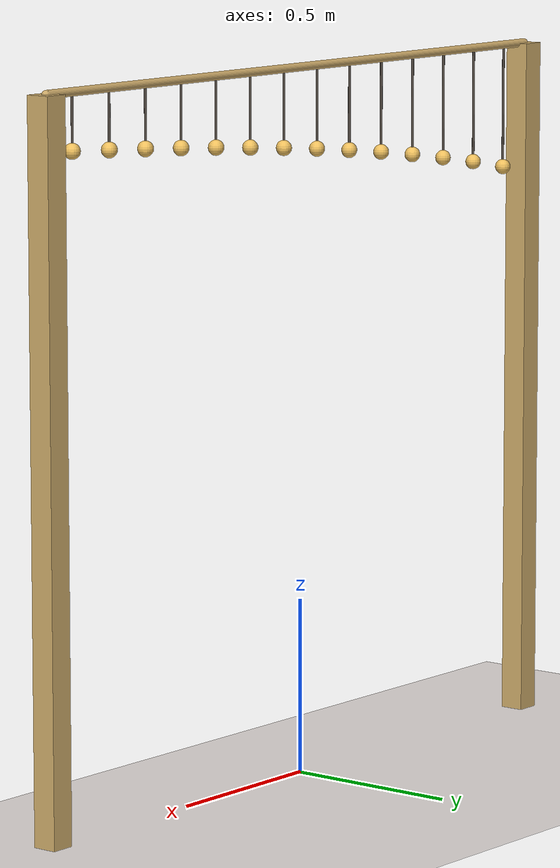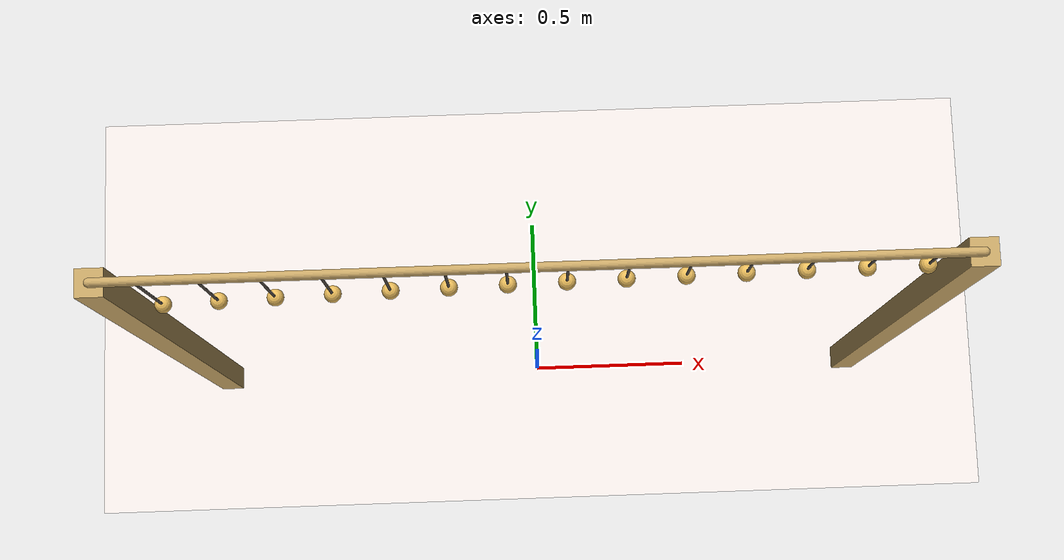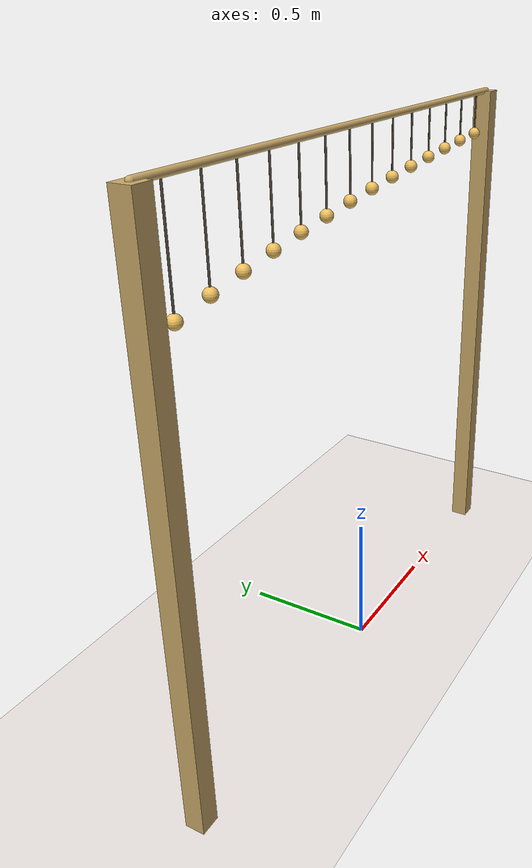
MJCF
<mujoco model="pendulum_waves">
  <compiler angle="radian" coordinate="local" autolimits="true"/>
  <option timestep="0.001" gravity="0 0 -9.81" integrator="implicitfast"/>

  <visual>
    <headlight diffuse="0 0 0" ambient="0.50 0.48 0.55" specular="0 0 0"/>
    <rgba haze="0.94 0.91 0.90 1"/>
    <global azimuth="120" elevation="-12" offwidth="1920" offheight="1080" fovy="38"/>
    <quality shadowsize="8192" offsamples="8"/>
    <map shadowclip="5" shadowscale="0.7"/>
  </visual>

  <asset>
    <texture type="skybox" builtin="flat"
             rgb1="0.74 0.68 0.86" rgb2="0.74 0.68 0.86"
             width="512" height="512" mark="none" markrgb="0 0 0"/>
    <material name="floor_mat"  rgba="0.94 0.91 0.90 1" specular="0" shininess="0"/>
    <material name="frame_wood" rgba="0.78 0.65 0.40 1" specular="0.12" shininess="0.15"/>
    <material name="rod_mat"    rgba="0.30 0.27 0.24 1" specular="0" shininess="0"/>
    <material name="bob_warm"   rgba="0.92 0.74 0.36 1" specular="0.4" shininess="0.55"/>
  </asset>

  <worldbody>
    <light pos="0 0 12" dir="-0.30 0.55 -1" directional="true" castshadow="true"
           diffuse="0.85 0.82 0.78" specular="0.15 0.15 0.15"/>
    <light pos="0 0 8" dir="0.40 -0.30 -1" directional="true" castshadow="false"
           diffuse="0.28 0.28 0.34" specular="0 0 0"/>

    <geom name="floor" type="plane" size="40 40 0.1" material="floor_mat"/>

    <geom type="box" size="0.035 0.035 1.00"
          pos="-1.0500 0 1.0000" material="frame_wood"/>
    <geom type="box" size="0.035 0.035 1.00"
          pos=" 1.0500 0 1.0000" material="frame_wood"/>
    <geom name="bar" type="capsule" fromto="-1.0500 0 2.0000  1.0500 0 2.0000" size="0.012"
          material="frame_wood"/>

    <body name="p0" pos="-0.9500 0 2.0000">
      <joint name="j0" type="hinge" axis="1 0 0" damping="0.0008"/>
      <geom type="capsule" fromto="0 0 0  0 0 -0.3578" size="0.0035"
            material="rod_mat" contype="0" conaffinity="0"/>
      <geom type="sphere" pos="0 0 -0.3578" size="0.022" mass="0.020"
            material="bob_warm" contype="0" conaffinity="0"/>
    </body>
    <body name="p1" pos="-0.8038 0 2.0000">
      <joint name="j1" type="hinge" axis="1 0 0" damping="0.0008"/>
      <geom type="capsule" fromto="0 0 0  0 0 -0.3308" size="0.0035"
            material="rod_mat" contype="0" conaffinity="0"/>
      <geom type="sphere" pos="0 0 -0.3308" size="0.022" mass="0.020"
            material="bob_warm" contype="0" conaffinity="0"/>
    </body>
    <body name="p2" pos="-0.6577 0 2.0000">
      <joint name="j2" type="hinge" axis="1 0 0" damping="0.0008"/>
      <geom type="capsule" fromto="0 0 0  0 0 -0.3068" size="0.0035"
            material="rod_mat" contype="0" conaffinity="0"/>
      <geom type="sphere" pos="0 0 -0.3068" size="0.022" mass="0.020"
            material="bob_warm" contype="0" conaffinity="0"/>
    </body>
    <body name="p3" pos="-0.5115 0 2.0000">
      <joint name="j3" type="hinge" axis="1 0 0" damping="0.0008"/>
      <geom type="capsule" fromto="0 0 0  0 0 -0.2853" size="0.0035"
            material="rod_mat" contype="0" conaffinity="0"/>
      <geom type="sphere" pos="0 0 -0.2853" size="0.022" mass="0.020"
            material="bob_warm" contype="0" conaffinity="0"/>
    </body>
    <body name="p4" pos="-0.3654 0 2.0000">
      <joint name="j4" type="hinge" axis="1 0 0" damping="0.0008"/>
      <geom type="capsule" fromto="0 0 0  0 0 -0.2659" size="0.0035"
            material="rod_mat" contype="0" conaffinity="0"/>
      <geom type="sphere" pos="0 0 -0.2659" size="0.022" mass="0.020"
            material="bob_warm" contype="0" conaffinity="0"/>
    </body>
    <body name="p5" pos="-0.2192 0 2.0000">
      <joint name="j5" type="hinge" axis="1 0 0" damping="0.0008"/>
      <geom type="capsule" fromto="0 0 0  0 0 -0.2485" size="0.0035"
            material="rod_mat" contype="0" conaffinity="0"/>
      <geom type="sphere" pos="0 0 -0.2485" size="0.022" mass="0.020"
            material="bob_warm" contype="0" conaffinity="0"/>
    </body>
    <body name="p6" pos="-0.0731 0 2.0000">
      <joint name="j6" type="hinge" axis="1 0 0" damping="0.0008"/>
      <geom type="capsule" fromto="0 0 0  0 0 -0.2327" size="0.0035"
            material="rod_mat" contype="0" conaffinity="0"/>
      <geom type="sphere" pos="0 0 -0.2327" size="0.022" mass="0.020"
            material="bob_warm" contype="0" conaffinity="0"/>
    </body>
    <body name="p7" pos="0.0731 0 2.0000">
      <joint name="j7" type="hinge" axis="1 0 0" damping="0.0008"/>
      <geom type="capsule" fromto="0 0 0  0 0 -0.2184" size="0.0035"
            material="rod_mat" contype="0" conaffinity="0"/>
      <geom type="sphere" pos="0 0 -0.2184" size="0.022" mass="0.020"
            material="bob_warm" contype="0" conaffinity="0"/>
    </body>
    <body name="p8" pos="0.2192 0 2.0000">
      <joint name="j8" type="hinge" axis="1 0 0" damping="0.0008"/>
      <geom type="capsule" fromto="0 0 0  0 0 -0.2054" size="0.0035"
            material="rod_mat" contype="0" conaffinity="0"/>
      <geom type="sphere" pos="0 0 -0.2054" size="0.022" mass="0.020"
            material="bob_warm" contype="0" conaffinity="0"/>
    </body>
    <body name="p9" pos="0.3654 0 2.0000">
      <joint name="j9" type="hinge" axis="1 0 0" damping="0.0008"/>
      <geom type="capsule" fromto="0 0 0  0 0 -0.1935" size="0.0035"
            material="rod_mat" contype="0" conaffinity="0"/>
      <geom type="sphere" pos="0 0 -0.1935" size="0.022" mass="0.020"
            material="bob_warm" contype="0" conaffinity="0"/>
    </body>
    <body name="p10" pos="0.5115 0 2.0000">
      <joint name="j10" type="hinge" axis="1 0 0" damping="0.0008"/>
      <geom type="capsule" fromto="0 0 0  0 0 -0.1826" size="0.0035"
            material="rod_mat" contype="0" conaffinity="0"/>
      <geom type="sphere" pos="0 0 -0.1826" size="0.022" mass="0.020"
            material="bob_warm" contype="0" conaffinity="0"/>
    </body>
    <body name="p11" pos="0.6577 0 2.0000">
      <joint name="j11" type="hinge" axis="1 0 0" damping="0.0008"/>
      <geom type="capsule" fromto="0 0 0  0 0 -0.1726" size="0.0035"
            material="rod_mat" contype="0" conaffinity="0"/>
      <geom type="sphere" pos="0 0 -0.1726" size="0.022" mass="0.020"
            material="bob_warm" contype="0" conaffinity="0"/>
    </body>
    <body name="p12" pos="0.8038 0 2.0000">
      <joint name="j12" type="hinge" axis="1 0 0" damping="0.0008"/>
      <geom type="capsule" fromto="0 0 0  0 0 -0.1634" size="0.0035"
            material="rod_mat" contype="0" conaffinity="0"/>
      <geom type="sphere" pos="0 0 -0.1634" size="0.022" mass="0.020"
            material="bob_warm" contype="0" conaffinity="0"/>
    </body>
    <body name="p13" pos="0.9500 0 2.0000">
      <joint name="j13" type="hinge" axis="1 0 0" damping="0.0008"/>
      <geom type="capsule" fromto="0 0 0  0 0 -0.1549" size="0.0035"
            material="rod_mat" contype="0" conaffinity="0"/>
      <geom type="sphere" pos="0 0 -0.1549" size="0.022" mass="0.020"
            material="bob_warm" contype="0" conaffinity="0"/>
    </body>

    <camera name="cam" pos="0 -1.8 3.6" fovy="40"
            xyaxes="1 0 0   0 0.688 0.726"/>
  </worldbody>
</mujoco>
